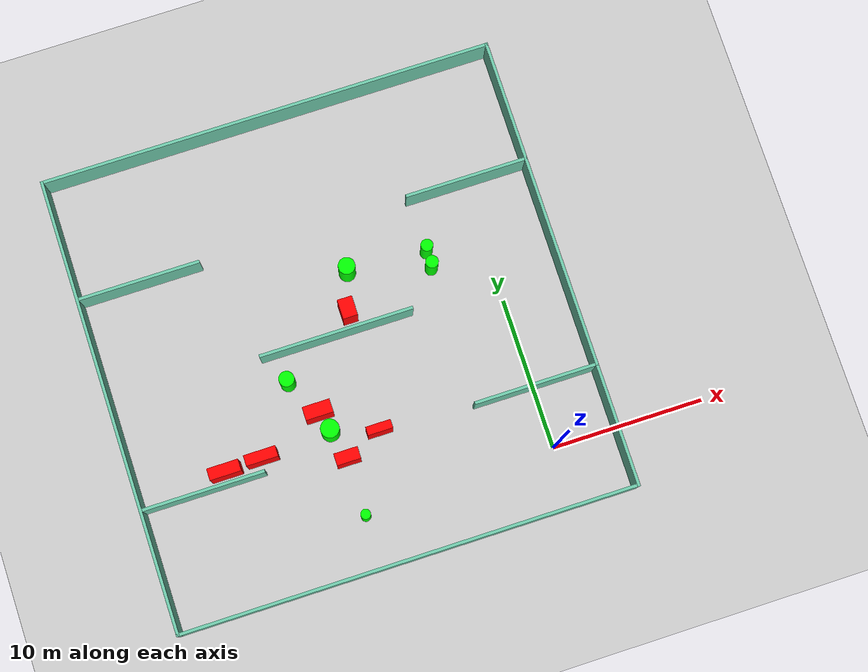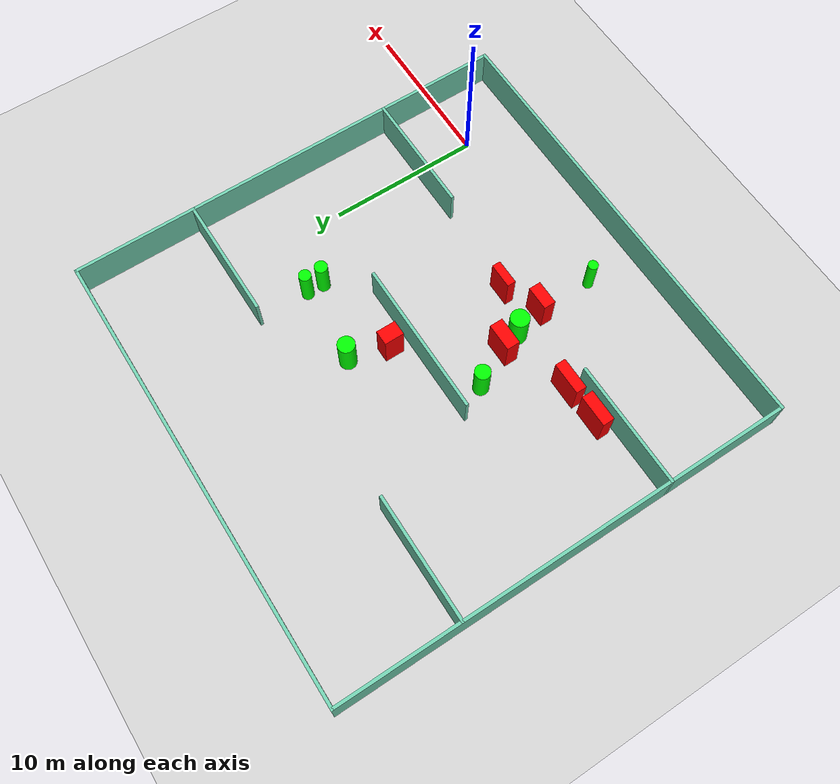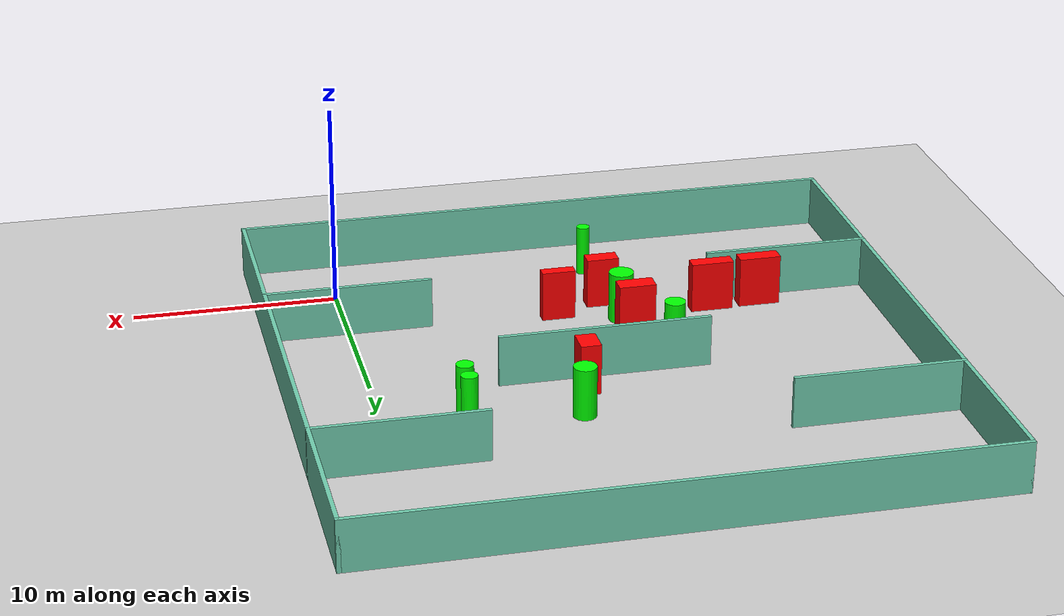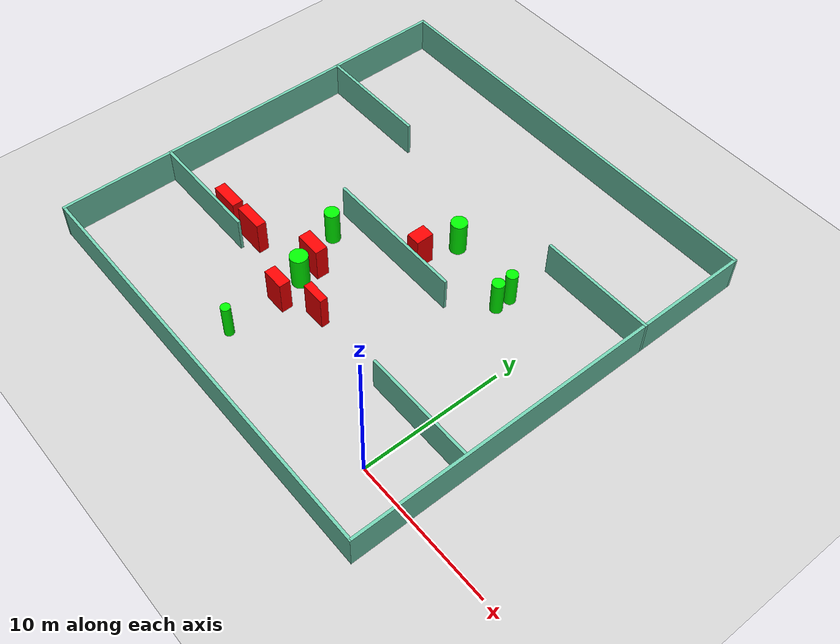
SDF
<sdf version="1.7">
 <world name="default">
  <light name="sun" type="directional">
   <pose>0 0 10 0 -0 0</pose>
   <diffuse>0.8 0.8 0.8 1</diffuse>
   <specular>0.2 0.2 0.2 1</specular>
   <attenuation>
    <range>1000</range>
    <constant>0.9</constant>
    <linear>0.01</linear>
    <quadratic>0.001</quadratic>
   </attenuation>
   <direction>-0.5 0.1 -0.9</direction>
   <spot><inner_angle>0</inner_angle><outer_angle>0</outer_angle><falloff>0</falloff></spot>
  </light>
  <model name="ground_plane">
   <static>1</static>
   <link name="link">
    <collision name="collision">
     <geometry><plane><normal>0 0 1</normal><size>100 100</size></plane></geometry>
     <surface>
      <contact><collide_bitmask>65535</collide_bitmask></contact>
      <friction><ode><mu>100</mu><mu2>50</mu2></ode></friction>
     </surface>
    </collision>
    <visual name="visual">
     <cast_shadows>0</cast_shadows>
     <geometry><plane><normal>0 0 1</normal><size>100 100</size></plane></geometry>
     <material>
      <script><uri>file://media/materials/scripts/gazebo.material</uri><name>Gazebo/Grey</name></script>
     </material>
    </visual>
   </link>
  </model>
  <gravity>0 0 -9.8</gravity>
  <magnetic_field>6e-06 2.3e-05 -4.2e-05</magnetic_field>
  <atmosphere type="adiabatic"/>
  <physics type="ode">
   <max_step_size>0.001</max_step_size>
   <real_time_factor>1</real_time_factor>
   <real_time_update_rate>1000</real_time_update_rate>
  </physics>
  <scene><ambient>0.4 0.4 0.4 1</ambient><background>0.7 0.7 0.7 1</background><shadows>1</shadows></scene>
  <spherical_coordinates>
   <surface_model>EARTH_WGS84</surface_model>
   <latitude_deg>0</latitude_deg>
   <longitude_deg>0</longitude_deg>
   <elevation>0</elevation>
   <heading_deg>0</heading_deg>
  </spherical_coordinates>
  <model name="my_base_walls">
   <link name="Wall_10">
    <collision name="Wall_10_Collision">
     <geometry><box><size>8.2 0.2 2.5</size></box></geometry>
     <pose>0 0 1.25 0 -0 0</pose>
    </collision>
    <visual name="Wall_10_Visual">
     <pose>0 0 1.25 0 -0 0</pose>
     <geometry><box><size>8.2 0.2 2.5</size></box></geometry>
     <material>
      <script><uri>file://media/materials/scripts/gazebo.material</uri><name>Gazebo/Grey</name></script>
      <ambient>0.435294 0.796078 0.67451 1</ambient>
     </material>
     <meta><layer>0</layer></meta>
    </visual>
    <pose>-11 -7 0 0 -0 0</pose>
   </link>
   <link name="Wall_12">
    <collision name="Wall_12_Collision">
     <geometry><box><size>8.2 0.2 2.5</size></box></geometry>
     <pose>0 0 1.25 0 -0 0</pose>
    </collision>
    <visual name="Wall_12_Visual">
     <pose>0 0 1.25 0 -0 0</pose>
     <geometry><box><size>8.2 0.2 2.5</size></box></geometry>
     <material>
      <script><uri>file://media/materials/scripts/gazebo.material</uri><name>Gazebo/Grey</name></script>
      <ambient>0.435294 0.796078 0.67451 1</ambient>
     </material>
     <meta><layer>0</layer></meta>
    </visual>
    <pose>-11 7 0 0 -0 0</pose>
   </link>
   <link name="Wall_14">
    <collision name="Wall_14_Collision">
     <geometry><box><size>8.2 0.2 2.5</size></box></geometry>
     <pose>0 0 1.25 0 -0 0</pose>
    </collision>
    <visual name="Wall_14_Visual">
     <pose>0 0 1.25 0 -0 0</pose>
     <geometry><box><size>8.2 0.2 2.5</size></box></geometry>
     <material>
      <script><uri>file://media/materials/scripts/gazebo.material</uri><name>Gazebo/Grey</name></script>
      <ambient>0.435294 0.796078 0.67451 1</ambient>
     </material>
     <meta><layer>0</layer></meta>
    </visual>
    <pose>11 7 0 0 -0 3.14159</pose>
   </link>
   <link name="Wall_16">
    <collision name="Wall_16_Collision">
     <geometry><box><size>10.2 0.2 2.5</size></box></geometry>
     <pose>0 0 1.25 0 -0 0</pose>
    </collision>
    <visual name="Wall_16_Visual">
     <pose>0 0 1.25 0 -0 0</pose>
     <geometry><box><size>10.2 0.2 2.5</size></box></geometry>
     <material>
      <script><uri>file://media/materials/scripts/gazebo.material</uri><name>Gazebo/Grey</name></script>
      <ambient>0.435294 0.796078 0.67451 1</ambient>
     </material>
     <meta><layer>0</layer></meta>
    </visual>
    <pose>0 0 0 0 -0 3.14159</pose>
   </link>
   <link name="Wall_2">
    <collision name="Wall_2_Collision">
     <geometry><box><size>30.2 0.2 2.5</size></box></geometry>
     <pose>0 0 1.25 0 -0 0</pose>
    </collision>
    <visual name="Wall_2_Visual">
     <pose>0 0 1.25 0 -0 0</pose>
     <geometry><box><size>30.2 0.2 2.5</size></box></geometry>
     <material>
      <script><uri>file://media/materials/scripts/gazebo.material</uri><name>Gazebo/Grey</name></script>
      <ambient>0.435294 0.796078 0.67451 1</ambient>
     </material>
     <meta><layer>0</layer></meta>
    </visual>
    <pose>0 -15 0 0 -0 3.14159</pose>
   </link>
   <link name="Wall_3">
    <collision name="Wall_3_Collision">
     <geometry><box><size>30.2 0.2 2.5</size></box></geometry>
     <pose>0 0 1.25 0 -0 0</pose>
    </collision>
    <visual name="Wall_3_Visual">
     <pose>0 0 1.25 0 -0 0</pose>
     <geometry><box><size>30.2 0.2 2.5</size></box></geometry>
     <material>
      <script><uri>file://media/materials/scripts/gazebo.material</uri><name>Gazebo/Grey</name></script>
      <ambient>0.435294 0.796078 0.67451 1</ambient>
     </material>
     <meta><layer>0</layer></meta>
    </visual>
    <pose>-15 0 0 0 -0 1.5708</pose>
   </link>
   <link name="Wall_4">
    <collision name="Wall_4_Collision">
     <geometry><box><size>30.2 0.2 2.5</size></box></geometry>
     <pose>0 0 1.25 0 -0 0</pose>
    </collision>
    <visual name="Wall_4_Visual">
     <pose>0 0 1.25 0 -0 0</pose>
     <geometry><box><size>30.2 0.2 2.5</size></box></geometry>
     <material>
      <script><uri>file://media/materials/scripts/gazebo.material</uri><name>Gazebo/Grey</name></script>
      <ambient>0.435294 0.796078 0.67451 1</ambient>
     </material>
     <meta><layer>0</layer></meta>
    </visual>
    <pose>0 15 0 0 -0 0</pose>
   </link>
   <link name="Wall_6">
    <collision name="Wall_6_Collision">
     <geometry><box><size>30.2 0.2 2.5</size></box></geometry>
     <pose>0 0 1.25 0 -0 0</pose>
    </collision>
    <visual name="Wall_6_Visual">
     <pose>0 0 1.25 0 -0 0</pose>
     <geometry><box><size>30.2 0.2 2.5</size></box></geometry>
     <material>
      <script><uri>file://media/materials/scripts/gazebo.material</uri><name>Gazebo/Grey</name></script>
      <ambient>0.435294 0.796078 0.67451 1</ambient>
     </material>
     <meta><layer>0</layer></meta>
    </visual>
    <pose>15 0 0 0 -0 1.5708</pose>
   </link>
   <link name="Wall_8">
    <collision name="Wall_8_Collision">
     <geometry><box><size>8.2 0.2 2.5</size></box></geometry>
     <pose>0 0 1.25 0 -0 0</pose>
    </collision>
    <visual name="Wall_8_Visual">
     <pose>0 0 1.25 0 -0 0</pose>
     <geometry><box><size>8.2 0.2 2.5</size></box></geometry>
     <material>
      <script><uri>file://media/materials/scripts/gazebo.material</uri><name>Gazebo/Grey</name></script>
      <ambient>0.435294 0.796078 0.67451 1</ambient>
     </material>
     <meta><layer>0</layer></meta>
    </visual>
    <pose>11 -7 0 0 -0 3.14159</pose>
   </link>
   <static>1</static>
   <pose>-11 11 0 0 -0 0</pose>
  </model>
  <model name="cylinder1">
   <static>1</static>
   <link name="link">
    <inertial>
     <mass>1</mass>
     <inertia><ixx>0.5</ixx><ixy>0</ixy><ixz>0</ixz><iyy>0.5</iyy><iyz>0</iyz><izz>1</izz></inertia>
    </inertial>
    <collision name="collision">
     <geometry><cylinder><radius>0.5036201642456359</radius><length>2.5</length></cylinder></geometry>
    </collision>
    <visual name="visual">
     <geometry><cylinder><radius>0.5036201642456359</radius><length>2.5</length></cylinder></geometry>
     <material>
      <ambient>0 1 0 1</ambient>
      <diffuse>0 1 0 1</diffuse>
      <specular>0.1 0.1 0.1 1</specular>
      <emissive>0 0 0 0</emissive>
     </material>
    </visual>
   </link>
   <pose>-14.884473798705613 9.094843686994716 1.25 0 0 0</pose>
  </model>
  <model name="cylinder2">
   <static>1</static>
   <link name="link">
    <inertial>
     <mass>1</mass>
     <inertia><ixx>0.5</ixx><ixy>0</ixy><ixz>0</ixz><iyy>0.5</iyy><iyz>0</iyz><izz>1</izz></inertia>
    </inertial>
    <collision name="collision">
     <geometry><cylinder><radius>0.4184111984074551</radius><length>2.5</length></cylinder></geometry>
    </collision>
    <visual name="visual">
     <geometry><cylinder><radius>0.4184111984074551</radius><length>2.5</length></cylinder></geometry>
     <material>
      <ambient>0 1 0 1</ambient>
      <diffuse>0 1 0 1</diffuse>
      <specular>0.1 0.1 0.1 1</specular>
      <emissive>0 0 0 0</emissive>
     </material>
    </visual>
   </link>
   <pose>-3.826258623669066 13.426983987498218 1.25 0 0 0</pose>
  </model>
  <model name="cylinder3">
   <static>1</static>
   <link name="link">
    <inertial>
     <mass>1</mass>
     <inertia><ixx>0.5</ixx><ixy>0</ixy><ixz>0</ixz><iyy>0.5</iyy><iyz>0</iyz><izz>1</izz></inertia>
    </inertial>
    <collision name="collision">
     <geometry><cylinder><radius>0.3256072083150908</radius><length>2.5</length></cylinder></geometry>
    </collision>
    <visual name="visual">
     <geometry><cylinder><radius>0.3256072083150908</radius><length>2.5</length></cylinder></geometry>
     <material>
      <ambient>0 1 0 1</ambient>
      <diffuse>0 1 0 1</diffuse>
      <specular>0.1 0.1 0.1 1</specular>
      <emissive>0 0 0 0</emissive>
     </material>
    </visual>
   </link>
   <pose>-12.73434704322064 -0.5026301969625258 1.25 0 0 0</pose>
  </model>
  <model name="cylinder4">
   <static>1</static>
   <link name="link">
    <inertial>
     <mass>1</mass>
     <inertia><ixx>0.5</ixx><ixy>0</ixy><ixz>0</ixz><iyy>0.5</iyy><iyz>0</iyz><izz>1</izz></inertia>
    </inertial>
    <collision name="collision">
     <geometry><cylinder><radius>0.5561540345687175</radius><length>2.5</length></cylinder></geometry>
    </collision>
    <visual name="visual">
     <geometry><cylinder><radius>0.5561540345687175</radius><length>2.5</length></cylinder></geometry>
     <material>
      <ambient>0 1 0 1</ambient>
      <diffuse>0 1 0 1</diffuse>
      <specular>0.1 0.1 0.1 1</specular>
      <emissive>0 0 0 0</emissive>
     </material>
    </visual>
   </link>
   <pose>-9.080415319956764 14.839726440980556 1.25 0 0 0</pose>
  </model>
  <model name="cylinder5">
   <static>1</static>
   <link name="link">
    <inertial>
     <mass>1</mass>
     <inertia><ixx>0.5</ixx><ixy>0</ixy><ixz>0</ixz><iyy>0.5</iyy><iyz>0</iyz><izz>1</izz></inertia>
    </inertial>
    <collision name="collision">
     <geometry><cylinder><radius>0.39948877099641394</radius><length>2.5</length></cylinder></geometry>
    </collision>
    <visual name="visual">
     <geometry><cylinder><radius>0.39948877099641394</radius><length>2.5</length></cylinder></geometry>
     <material>
      <ambient>0 1 0 1</ambient>
      <diffuse>0 1 0 1</diffuse>
      <specular>0.1 0.1 0.1 1</specular>
      <emissive>0 0 0 0</emissive>
     </material>
    </visual>
   </link>
   <pose>-3.8063251278934374 14.547207591915459 1.25 0 0 0</pose>
  </model>
  <model name="cylinder6">
   <static>1</static>
   <link name="link">
    <inertial>
     <mass>1</mass>
     <inertia><ixx>0.5</ixx><ixy>0</ixy><ixz>0</ixz><iyy>0.5</iyy><iyz>0</iyz><izz>1</izz></inertia>
    </inertial>
    <collision name="collision">
     <geometry><cylinder><radius>0.6099150882692397</radius><length>2.5</length></cylinder></geometry>
    </collision>
    <visual name="visual">
     <geometry><cylinder><radius>0.6099150882692397</radius><length>2.5</length></cylinder></geometry>
     <material>
      <ambient>0 1 0 1</ambient>
      <diffuse>0 1 0 1</diffuse>
      <specular>0.1 0.1 0.1 1</specular>
      <emissive>0 0 0 0</emissive>
     </material>
    </visual>
   </link>
   <pose>-13.237743735601658 5.283152548680432 1.25 0 0 0</pose>
  </model>
  <model name="box1">
   <static>1</static>
   <link name="link">
    <inertial>
     <mass>1</mass>
     <inertia><ixx>0.083</ixx><ixy>0</ixy><ixz>0</ixz><iyy>0.083</iyy><iyz>0</iyz><izz>0.083</izz></inertia>
    </inertial>
    <collision name="collision">
     <geometry><box><size>1.5737979590370135 0.7837969015541126 2.5</size></box></geometry>
    </collision>
    <visual name="visual">
     <geometry><box><size>1.5737979590370135 0.7837969015541126 2.5</size></box></geometry>
     <material>
      <ambient>1 0 0 1</ambient>
      <diffuse>1 0 0 1</diffuse>
      <specular>0.1 0.1 0.1 1</specular>
      <emissive>0 0 0 0</emissive>
     </material>
    </visual>
    <sensor name="my_contact" type="contact">
     <contact><collision>box_collision</collision><topic>__default_topic__</topic></contact>
    </sensor>
   </link>
   <pose>-12.725798306109512 3.297046828157609 1.25 0 0 0</pose>
  </model>
  <model name="box2">
   <static>1</static>
   <link name="link">
    <inertial>
     <mass>1</mass>
     <inertia><ixx>0.083</ixx><ixy>0</ixy><ixz>0</ixz><iyy>0.083</iyy><iyz>0</iyz><izz>0.083</izz></inertia>
    </inertial>
    <collision name="collision">
     <geometry><box><size>2.0902375177364947 0.7006840934068468 2.5</size></box></geometry>
    </collision>
    <visual name="visual">
     <geometry><box><size>2.0902375177364947 0.7006840934068468 2.5</size></box></geometry>
     <material>
      <ambient>1 0 0 1</ambient>
      <diffuse>1 0 0 1</diffuse>
      <specular>0.1 0.1 0.1 1</specular>
      <emissive>0 0 0 0</emissive>
     </material>
    </visual>
    <sensor name="my_contact" type="contact">
     <contact><collision>box_collision</collision><topic>__default_topic__</topic></contact>
    </sensor>
   </link>
   <pose>-17.87005286607861 4.969790610066716 1.25 0 0 0</pose>
  </model>
  <model name="box3">
   <static>1</static>
   <link name="link">
    <inertial>
     <mass>1</mass>
     <inertia><ixx>0.083</ixx><ixy>0</ixy><ixz>0</ixz><iyy>0.083</iyy><iyz>0</iyz><izz>0.083</izz></inertia>
    </inertial>
    <collision name="collision">
     <geometry><box><size>1.6416844441636982 0.5614432647297845 2.5</size></box></geometry>
    </collision>
    <visual name="visual">
     <geometry><box><size>1.6416844441636982 0.5614432647297845 2.5</size></box></geometry>
     <material>
      <ambient>1 0 0 1</ambient>
      <diffuse>1 0 0 1</diffuse>
      <specular>0.1 0.1 0.1 1</specular>
      <emissive>0 0 0 0</emissive>
     </material>
    </visual>
    <sensor name="my_contact" type="contact">
     <contact><collision>box_collision</collision><topic>__default_topic__</topic></contact>
    </sensor>
   </link>
   <pose>-10.27467658054832 4.392216041874345 1.25 0 0 0</pose>
  </model>
  <model name="box4">
   <static>1</static>
   <link name="link">
    <inertial>
     <mass>1</mass>
     <inertia><ixx>0.083</ixx><ixy>0</ixy><ixz>0</ixz><iyy>0.083</iyy><iyz>0</iyz><izz>0.083</izz></inertia>
    </inertial>
    <collision name="collision">
     <geometry><box><size>0.9776594572540294 1.2867116869655781 2.5</size></box></geometry>
    </collision>
    <visual name="visual">
     <geometry><box><size>0.9776594572540294 1.2867116869655781 2.5</size></box></geometry>
     <material>
      <ambient>1 0 0 1</ambient>
      <diffuse>1 0 0 1</diffuse>
      <specular>0.1 0.1 0.1 1</specular>
      <emissive>0 0 0 0</emissive>
     </material>
    </visual>
    <sensor name="my_contact" type="contact">
     <contact><collision>box_collision</collision><topic>__default_topic__</topic></contact>
    </sensor>
   </link>
   <pose>-9.845217771683544 12.27029206064229 1.25 0 0 0</pose>
  </model>
  <model name="box5">
   <static>1</static>
   <link name="link">
    <inertial>
     <mass>1</mass>
     <inertia><ixx>0.083</ixx><ixy>0</ixy><ixz>0</ixz><iyy>0.083</iyy><iyz>0</iyz><izz>0.083</izz></inertia>
    </inertial>
    <collision name="collision">
     <geometry><box><size>1.8128002785599595 0.8777967897026862 2.5</size></box></geometry>
    </collision>
    <visual name="visual">
     <geometry><box><size>1.8128002785599595 0.8777967897026862 2.5</size></box></geometry>
     <material>
      <ambient>1 0 0 1</ambient>
      <diffuse>1 0 0 1</diffuse>
      <specular>0.1 0.1 0.1 1</specular>
      <emissive>0 0 0 0</emissive>
     </material>
    </visual>
    <sensor name="my_contact" type="contact">
     <contact><collision>box_collision</collision><topic>__default_topic__</topic></contact>
    </sensor>
   </link>
   <pose>-13.604691275301137 6.646110363219162 1.25 0 0 0</pose>
  </model>
  <model name="box6">
   <static>1</static>
   <link name="link">
    <inertial>
     <mass>1</mass>
     <inertia><ixx>0.083</ixx><ixy>0</ixy><ixz>0</ixz><iyy>0.083</iyy><iyz>0</iyz><izz>0.083</izz></inertia>
    </inertial>
    <collision name="collision">
     <geometry><box><size>2.050958662443903 0.7686016229041328 2.5</size></box></geometry>
    </collision>
    <visual name="visual">
     <geometry><box><size>2.050958662443903 0.7686016229041328 2.5</size></box></geometry>
     <material>
      <ambient>1 0 0 1</ambient>
      <diffuse>1 0 0 1</diffuse>
      <specular>0.1 0.1 0.1 1</specular>
      <emissive>0 0 0 0</emissive>
     </material>
    </visual>
    <sensor name="my_contact" type="contact">
     <contact><collision>box_collision</collision><topic>__default_topic__</topic></contact>
    </sensor>
   </link>
   <pose>-20.313183893680225 4.846301470335653 1.25 0 0 0</pose>
  </model>
 </world>
</sdf>
